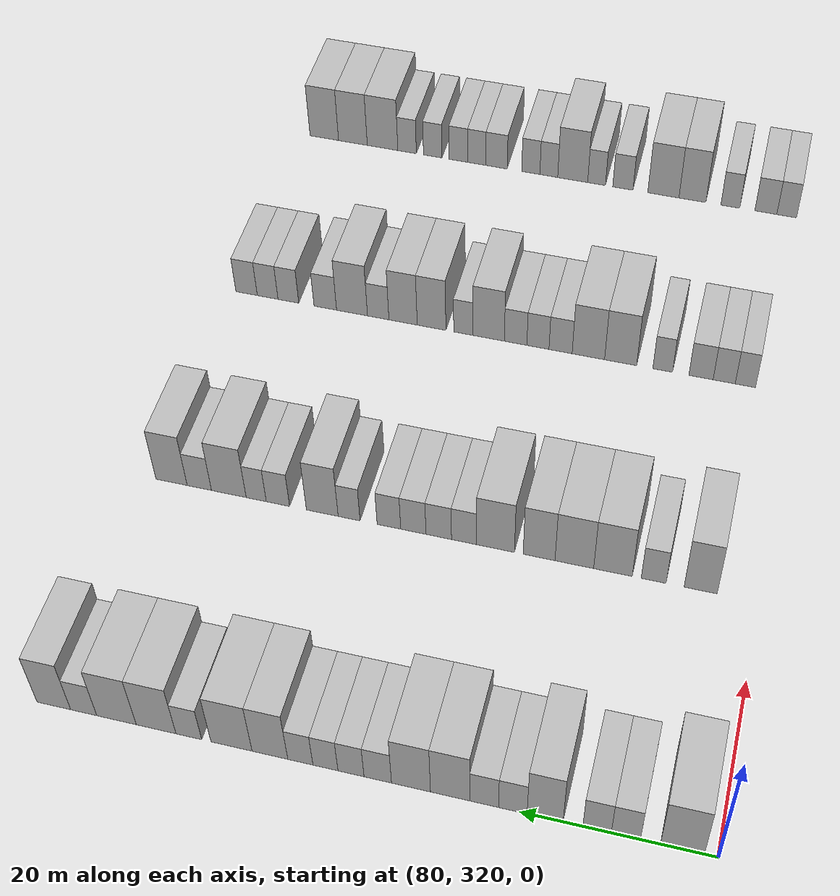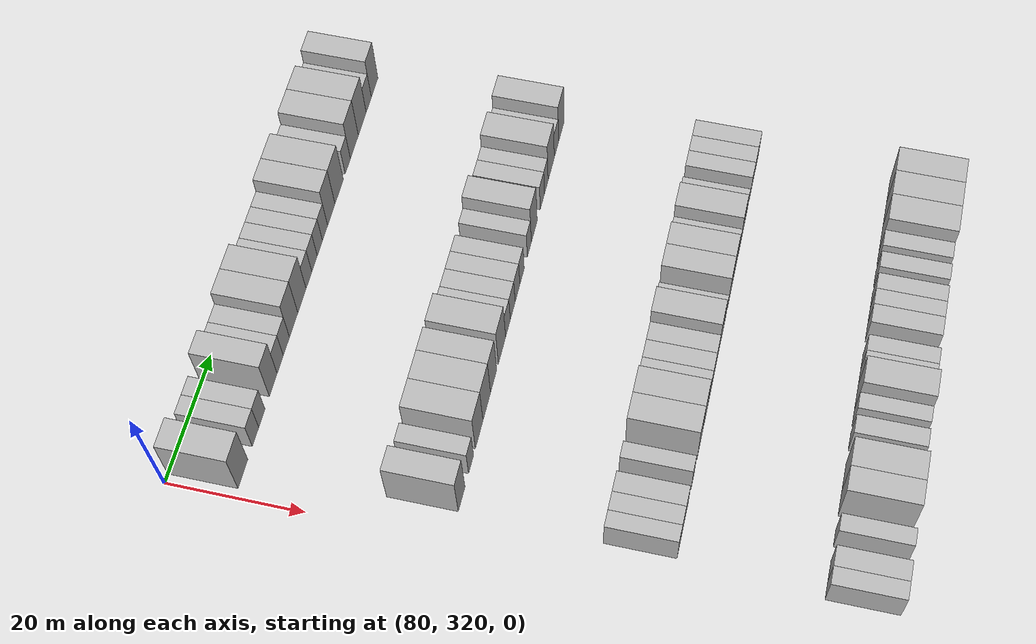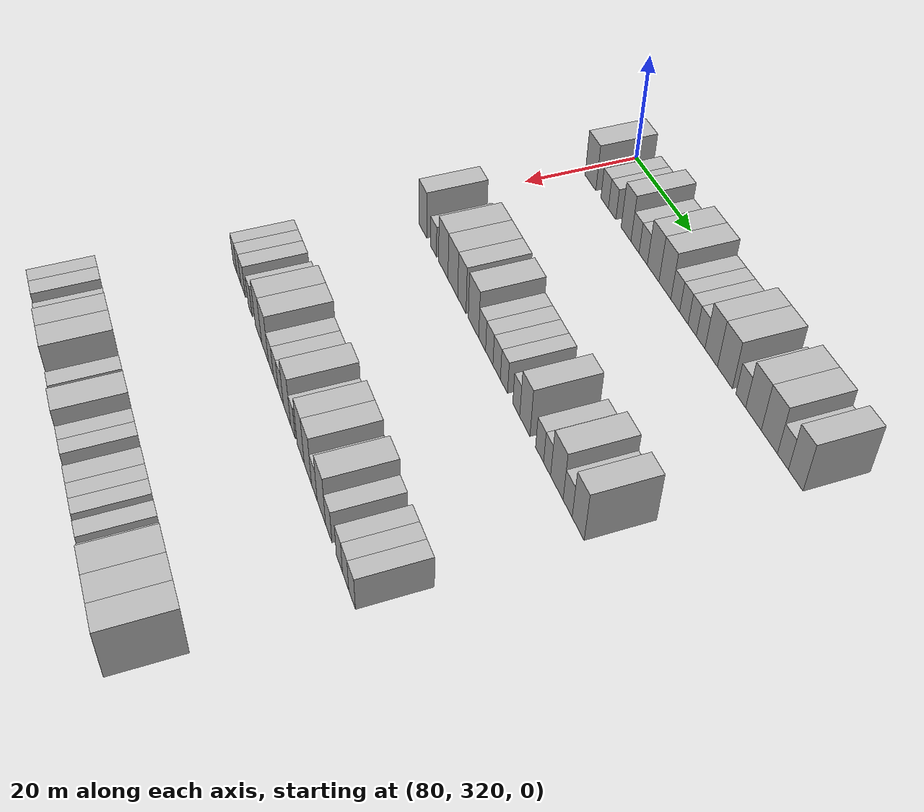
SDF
<sdf version="1.6">
 <world name="default">
  <model name="building_661">
   <static>1</static>
   <pose>85.0000 323.5908 0 0.000000 0.000000 0.000000</pose>
   <link name="link">
    <pose>0 0 4.50 0 0 0</pose>
    <collision name="collision"><geometry><box><size>10.0000 4.3597 9.0000</size></box></geometry></collision>
    <visual name="visual">
     <cast_shadows>0</cast_shadows>
     <geometry><box><size>10.0000 4.3597 9.0000</size></box></geometry>
     <material>
      <script>
       <uri>model://HANNAS_wall/materials/scripts</uri>
       <uri>model://HANNAS_wall/materials/textures</uri>
       <name>vrc/HANNAS_wall</name>
      </script>
     </material>
    </visual>
   </link>
  </model>
  <model name="building_662">
   <static>1</static>
   <pose>85.0000 329.2293 0 0.000000 0.000000 0.000000</pose>
   <link name="link">
    <pose>0 0 3.00 0 0 0</pose>
    <collision name="collision"><geometry><box><size>10.0000 2.9172 6.0000</size></box></geometry></collision>
    <visual name="visual">
     <cast_shadows>0</cast_shadows>
     <geometry><box><size>10.0000 2.9172 6.0000</size></box></geometry>
     <material>
      <script>
       <uri>model://HANNAS_wall/materials/scripts</uri>
       <uri>model://HANNAS_wall/materials/textures</uri>
       <name>vrc/HANNAS_wall</name>
      </script>
     </material>
    </visual>
   </link>
  </model>
  <model name="building_663">
   <static>1</static>
   <pose>85.0000 332.1203 0 0.000000 0.000000 0.000000</pose>
   <link name="link">
    <pose>0 0 3.00 0 0 0</pose>
    <collision name="collision"><geometry><box><size>10.0000 2.8648 6.0000</size></box></geometry></collision>
    <visual name="visual">
     <cast_shadows>0</cast_shadows>
     <geometry><box><size>10.0000 2.8648 6.0000</size></box></geometry>
     <material>
      <script>
       <uri>model://HANNAS_wall/materials/scripts</uri>
       <uri>model://HANNAS_wall/materials/textures</uri>
       <name>vrc/HANNAS_wall</name>
      </script>
     </material>
    </visual>
   </link>
  </model>
  <model name="building_664">
   <static>1</static>
   <pose>85.0000 337.3831 0 0.000000 0.000000 0.000000</pose>
   <link name="link">
    <pose>0 0 4.50 0 0 0</pose>
    <collision name="collision"><geometry><box><size>10.0000 3.6607 9.0000</size></box></geometry></collision>
    <visual name="visual">
     <cast_shadows>0</cast_shadows>
     <geometry><box><size>10.0000 3.6607 9.0000</size></box></geometry>
     <material>
      <script>
       <uri>model://HANNAS_wall/materials/scripts</uri>
       <uri>model://HANNAS_wall/materials/textures</uri>
       <name>vrc/HANNAS_wall</name>
      </script>
     </material>
    </visual>
   </link>
  </model>
  <model name="building_665">
   <static>1</static>
   <pose>85.0000 340.6712 0 0.000000 0.000000 0.000000</pose>
   <link name="link">
    <pose>0 0 3.00 0 0 0</pose>
    <collision name="collision"><geometry><box><size>10.0000 2.9155 6.0000</size></box></geometry></collision>
    <visual name="visual">
     <cast_shadows>0</cast_shadows>
     <geometry><box><size>10.0000 2.9155 6.0000</size></box></geometry>
     <material>
      <script>
       <uri>model://HANNAS_wall/materials/scripts</uri>
       <uri>model://HANNAS_wall/materials/textures</uri>
       <name>vrc/HANNAS_wall</name>
      </script>
     </material>
    </visual>
   </link>
  </model>
  <model name="building_666">
   <static>1</static>
   <pose>85.0000 343.6077 0 0.000000 0.000000 0.000000</pose>
   <link name="link">
    <pose>0 0 3.00 0 0 0</pose>
    <collision name="collision"><geometry><box><size>10.0000 2.9574 6.0000</size></box></geometry></collision>
    <visual name="visual">
     <cast_shadows>0</cast_shadows>
     <geometry><box><size>10.0000 2.9574 6.0000</size></box></geometry>
     <material>
      <script>
       <uri>model://HANNAS_wall/materials/scripts</uri>
       <uri>model://HANNAS_wall/materials/textures</uri>
       <name>vrc/HANNAS_wall</name>
      </script>
     </material>
    </visual>
   </link>
  </model>
  <model name="building_667">
   <static>1</static>
   <pose>85.0000 347.1143 0 0.000000 0.000000 0.000000</pose>
   <link name="link">
    <pose>0 0 4.50 0 0 0</pose>
    <collision name="collision"><geometry><box><size>10.0000 4.0559 9.0000</size></box></geometry></collision>
    <visual name="visual">
     <cast_shadows>0</cast_shadows>
     <geometry><box><size>10.0000 4.0559 9.0000</size></box></geometry>
     <material>
      <script>
       <uri>model://HANNAS_wall/materials/scripts</uri>
       <uri>model://HANNAS_wall/materials/textures</uri>
       <name>vrc/HANNAS_wall</name>
      </script>
     </material>
    </visual>
   </link>
  </model>
  <model name="building_668">
   <static>1</static>
   <pose>85.0000 351.1726 0 0.000000 0.000000 0.000000</pose>
   <link name="link">
    <pose>0 0 4.50 0 0 0</pose>
    <collision name="collision"><geometry><box><size>10.0000 4.0607 9.0000</size></box></geometry></collision>
    <visual name="visual">
     <cast_shadows>0</cast_shadows>
     <geometry><box><size>10.0000 4.0607 9.0000</size></box></geometry>
     <material>
      <script>
       <uri>model://HANNAS_wall/materials/scripts</uri>
       <uri>model://HANNAS_wall/materials/textures</uri>
       <name>vrc/HANNAS_wall</name>
      </script>
     </material>
    </visual>
   </link>
  </model>
  <model name="building_669">
   <static>1</static>
   <pose>85.0000 354.6429 0 0.000000 0.000000 0.000000</pose>
   <link name="link">
    <pose>0 0 3.00 0 0 0</pose>
    <collision name="collision"><geometry><box><size>10.0000 2.8799 6.0000</size></box></geometry></collision>
    <visual name="visual">
     <cast_shadows>0</cast_shadows>
     <geometry><box><size>10.0000 2.8799 6.0000</size></box></geometry>
     <material>
      <script>
       <uri>model://HANNAS_wall/materials/scripts</uri>
       <uri>model://HANNAS_wall/materials/textures</uri>
       <name>vrc/HANNAS_wall</name>
      </script>
     </material>
    </visual>
   </link>
  </model>
  <model name="building_670">
   <static>1</static>
   <pose>85.0000 357.4559 0 0.000000 0.000000 0.000000</pose>
   <link name="link">
    <pose>0 0 3.00 0 0 0</pose>
    <collision name="collision"><geometry><box><size>10.0000 2.7462 6.0000</size></box></geometry></collision>
    <visual name="visual">
     <cast_shadows>0</cast_shadows>
     <geometry><box><size>10.0000 2.7462 6.0000</size></box></geometry>
     <material>
      <script>
       <uri>model://HANNAS_wall/materials/scripts</uri>
       <uri>model://HANNAS_wall/materials/textures</uri>
       <name>vrc/HANNAS_wall</name>
      </script>
     </material>
    </visual>
   </link>
  </model>
  <model name="building_671">
   <static>1</static>
   <pose>85.0000 360.1552 0 0.000000 0.000000 0.000000</pose>
   <link name="link">
    <pose>0 0 3.00 0 0 0</pose>
    <collision name="collision"><geometry><box><size>10.0000 2.6524 6.0000</size></box></geometry></collision>
    <visual name="visual">
     <cast_shadows>0</cast_shadows>
     <geometry><box><size>10.0000 2.6524 6.0000</size></box></geometry>
     <material>
      <script>
       <uri>model://HANNAS_wall/materials/scripts</uri>
       <uri>model://HANNAS_wall/materials/textures</uri>
       <name>vrc/HANNAS_wall</name>
      </script>
     </material>
    </visual>
   </link>
  </model>
  <model name="building_672">
   <static>1</static>
   <pose>85.0000 362.8177 0 0.000000 0.000000 0.000000</pose>
   <link name="link">
    <pose>0 0 3.00 0 0 0</pose>
    <collision name="collision"><geometry><box><size>10.0000 2.6727 6.0000</size></box></geometry></collision>
    <visual name="visual">
     <cast_shadows>0</cast_shadows>
     <geometry><box><size>10.0000 2.6727 6.0000</size></box></geometry>
     <material>
      <script>
       <uri>model://HANNAS_wall/materials/scripts</uri>
       <uri>model://HANNAS_wall/materials/textures</uri>
       <name>vrc/HANNAS_wall</name>
      </script>
     </material>
    </visual>
   </link>
  </model>
  <model name="building_673">
   <static>1</static>
   <pose>85.0000 366.0687 0 0.000000 0.000000 0.000000</pose>
   <link name="link">
    <pose>0 0 4.50 0 0 0</pose>
    <collision name="collision"><geometry><box><size>10.0000 3.8294 9.0000</size></box></geometry></collision>
    <visual name="visual">
     <cast_shadows>0</cast_shadows>
     <geometry><box><size>10.0000 3.8294 9.0000</size></box></geometry>
     <material>
      <script>
       <uri>model://HANNAS_wall/materials/scripts</uri>
       <uri>model://HANNAS_wall/materials/textures</uri>
       <name>vrc/HANNAS_wall</name>
      </script>
     </material>
    </visual>
   </link>
  </model>
  <model name="building_674">
   <static>1</static>
   <pose>85.0000 370.1975 0 0.000000 0.000000 0.000000</pose>
   <link name="link">
    <pose>0 0 4.50 0 0 0</pose>
    <collision name="collision"><geometry><box><size>10.0000 4.4280 9.0000</size></box></geometry></collision>
    <visual name="visual">
     <cast_shadows>0</cast_shadows>
     <geometry><box><size>10.0000 4.4280 9.0000</size></box></geometry>
     <material>
      <script>
       <uri>model://HANNAS_wall/materials/scripts</uri>
       <uri>model://HANNAS_wall/materials/textures</uri>
       <name>vrc/HANNAS_wall</name>
      </script>
     </material>
    </visual>
   </link>
  </model>
  <model name="building_675">
   <static>1</static>
   <pose>85.0000 374.8114 0 0.000000 0.000000 0.000000</pose>
   <link name="link">
    <pose>0 0 3.00 0 0 0</pose>
    <collision name="collision"><geometry><box><size>10.0000 2.7998 6.0000</size></box></geometry></collision>
    <visual name="visual">
     <cast_shadows>0</cast_shadows>
     <geometry><box><size>10.0000 2.7998 6.0000</size></box></geometry>
     <material>
      <script>
       <uri>model://HANNAS_wall/materials/scripts</uri>
       <uri>model://HANNAS_wall/materials/textures</uri>
       <name>vrc/HANNAS_wall</name>
      </script>
     </material>
    </visual>
   </link>
  </model>
  <model name="building_676">
   <static>1</static>
   <pose>85.0000 378.3871 0 0.000000 0.000000 0.000000</pose>
   <link name="link">
    <pose>0 0 4.50 0 0 0</pose>
    <collision name="collision"><geometry><box><size>10.0000 4.3517 9.0000</size></box></geometry></collision>
    <visual name="visual">
     <cast_shadows>0</cast_shadows>
     <geometry><box><size>10.0000 4.3517 9.0000</size></box></geometry>
     <material>
      <script>
       <uri>model://HANNAS_wall/materials/scripts</uri>
       <uri>model://HANNAS_wall/materials/textures</uri>
       <name>vrc/HANNAS_wall</name>
      </script>
     </material>
    </visual>
   </link>
  </model>
  <model name="building_677">
   <static>1</static>
   <pose>85.0000 382.7381 0 0.000000 0.000000 0.000000</pose>
   <link name="link">
    <pose>0 0 4.50 0 0 0</pose>
    <collision name="collision"><geometry><box><size>10.0000 4.3503 9.0000</size></box></geometry></collision>
    <visual name="visual">
     <cast_shadows>0</cast_shadows>
     <geometry><box><size>10.0000 4.3503 9.0000</size></box></geometry>
     <material>
      <script>
       <uri>model://HANNAS_wall/materials/scripts</uri>
       <uri>model://HANNAS_wall/materials/textures</uri>
       <name>vrc/HANNAS_wall</name>
      </script>
     </material>
    </visual>
   </link>
  </model>
  <model name="building_678">
   <static>1</static>
   <pose>85.0000 386.3577 0 0.000000 0.000000 0.000000</pose>
   <link name="link">
    <pose>0 0 3.00 0 0 0</pose>
    <collision name="collision"><geometry><box><size>10.0000 2.8889 6.0000</size></box></geometry></collision>
    <visual name="visual">
     <cast_shadows>0</cast_shadows>
     <geometry><box><size>10.0000 2.8889 6.0000</size></box></geometry>
     <material>
      <script>
       <uri>model://HANNAS_wall/materials/scripts</uri>
       <uri>model://HANNAS_wall/materials/textures</uri>
       <name>vrc/HANNAS_wall</name>
      </script>
     </material>
    </visual>
   </link>
  </model>
  <model name="building_679">
   <static>1</static>
   <pose>85.0000 389.6810 0 0.000000 0.000000 0.000000</pose>
   <link name="link">
    <pose>0 0 4.50 0 0 0</pose>
    <collision name="collision"><geometry><box><size>10.0000 3.7577 9.0000</size></box></geometry></collision>
    <visual name="visual">
     <cast_shadows>0</cast_shadows>
     <geometry><box><size>10.0000 3.7577 9.0000</size></box></geometry>
     <material>
      <script>
       <uri>model://HANNAS_wall/materials/scripts</uri>
       <uri>model://HANNAS_wall/materials/textures</uri>
       <name>vrc/HANNAS_wall</name>
      </script>
     </material>
    </visual>
   </link>
  </model>
  <model name="building_889">
   <static>1</static>
   <pose>115.0000 326.3951 0 0.000000 0.000000 0.000000</pose>
   <link name="link">
    <pose>0 0 4.50 0 0 0</pose>
    <collision name="collision"><geometry><box><size>10.0000 3.6550 9.0000</size></box></geometry></collision>
    <visual name="visual">
     <cast_shadows>0</cast_shadows>
     <geometry><box><size>10.0000 3.6550 9.0000</size></box></geometry>
     <material>
      <script>
       <uri>model://HANNAS_wall/materials/scripts</uri>
       <uri>model://HANNAS_wall/materials/textures</uri>
       <name>vrc/HANNAS_wall</name>
      </script>
     </material>
    </visual>
   </link>
  </model>
  <model name="building_890">
   <static>1</static>
   <pose>115.0000 331.6067 0 0.000000 0.000000 0.000000</pose>
   <link name="link">
    <pose>0 0 3.00 0 0 0</pose>
    <collision name="collision"><geometry><box><size>10.0000 2.7681 6.0000</size></box></geometry></collision>
    <visual name="visual">
     <cast_shadows>0</cast_shadows>
     <geometry><box><size>10.0000 2.7681 6.0000</size></box></geometry>
     <material>
      <script>
       <uri>model://HANNAS_wall/materials/scripts</uri>
       <uri>model://HANNAS_wall/materials/textures</uri>
       <name>vrc/HANNAS_wall</name>
      </script>
     </material>
    </visual>
   </link>
  </model>
  <model name="building_891">
   <static>1</static>
   <pose>115.0000 336.1559 0 0.000000 0.000000 0.000000</pose>
   <link name="link">
    <pose>0 0 4.50 0 0 0</pose>
    <collision name="collision"><geometry><box><size>10.0000 4.3303 9.0000</size></box></geometry></collision>
    <visual name="visual">
     <cast_shadows>0</cast_shadows>
     <geometry><box><size>10.0000 4.3303 9.0000</size></box></geometry>
     <material>
      <script>
       <uri>model://HANNAS_wall/materials/scripts</uri>
       <uri>model://HANNAS_wall/materials/textures</uri>
       <name>vrc/HANNAS_wall</name>
      </script>
     </material>
    </visual>
   </link>
  </model>
  <model name="building_892">
   <static>1</static>
   <pose>115.0000 340.5060 0 0.000000 0.000000 0.000000</pose>
   <link name="link">
    <pose>0 0 4.50 0 0 0</pose>
    <collision name="collision"><geometry><box><size>10.0000 4.3699 9.0000</size></box></geometry></collision>
    <visual name="visual">
     <cast_shadows>0</cast_shadows>
     <geometry><box><size>10.0000 4.3699 9.0000</size></box></geometry>
     <material>
      <script>
       <uri>model://HANNAS_wall/materials/scripts</uri>
       <uri>model://HANNAS_wall/materials/textures</uri>
       <name>vrc/HANNAS_wall</name>
      </script>
     </material>
    </visual>
   </link>
  </model>
  <model name="building_893">
   <static>1</static>
   <pose>115.0000 344.5002 0 0.000000 0.000000 0.000000</pose>
   <link name="link">
    <pose>0 0 4.50 0 0 0</pose>
    <collision name="collision"><geometry><box><size>10.0000 3.6186 9.0000</size></box></geometry></collision>
    <visual name="visual">
     <cast_shadows>0</cast_shadows>
     <geometry><box><size>10.0000 3.6186 9.0000</size></box></geometry>
     <material>
      <script>
       <uri>model://HANNAS_wall/materials/scripts</uri>
       <uri>model://HANNAS_wall/materials/textures</uri>
       <name>vrc/HANNAS_wall</name>
      </script>
     </material>
    </visual>
   </link>
  </model>
  <model name="building_894">
   <static>1</static>
   <pose>115.0000 349.4964 0 0.000000 0.000000 0.000000</pose>
   <link name="link">
    <pose>0 0 4.50 0 0 0</pose>
    <collision name="collision"><geometry><box><size>10.0000 4.3738 9.0000</size></box></geometry></collision>
    <visual name="visual">
     <cast_shadows>0</cast_shadows>
     <geometry><box><size>10.0000 4.3738 9.0000</size></box></geometry>
     <material>
      <script>
       <uri>model://HANNAS_wall/materials/scripts</uri>
       <uri>model://HANNAS_wall/materials/textures</uri>
       <name>vrc/HANNAS_wall</name>
      </script>
     </material>
    </visual>
   </link>
  </model>
  <model name="building_895">
   <static>1</static>
   <pose>115.0000 353.1122 0 0.000000 0.000000 0.000000</pose>
   <link name="link">
    <pose>0 0 3.00 0 0 0</pose>
    <collision name="collision"><geometry><box><size>10.0000 2.8577 6.0000</size></box></geometry></collision>
    <visual name="visual">
     <cast_shadows>0</cast_shadows>
     <geometry><box><size>10.0000 2.8577 6.0000</size></box></geometry>
     <material>
      <script>
       <uri>model://HANNAS_wall/materials/scripts</uri>
       <uri>model://HANNAS_wall/materials/textures</uri>
       <name>vrc/HANNAS_wall</name>
      </script>
     </material>
    </visual>
   </link>
  </model>
  <model name="building_896">
   <static>1</static>
   <pose>115.0000 356.0204 0 0.000000 0.000000 0.000000</pose>
   <link name="link">
    <pose>0 0 3.00 0 0 0</pose>
    <collision name="collision"><geometry><box><size>10.0000 2.9588 6.0000</size></box></geometry></collision>
    <visual name="visual">
     <cast_shadows>0</cast_shadows>
     <geometry><box><size>10.0000 2.9588 6.0000</size></box></geometry>
     <material>
      <script>
       <uri>model://HANNAS_wall/materials/scripts</uri>
       <uri>model://HANNAS_wall/materials/textures</uri>
       <name>vrc/HANNAS_wall</name>
      </script>
     </material>
    </visual>
   </link>
  </model>
  <model name="building_897">
   <static>1</static>
   <pose>115.0000 358.9699 0 0.000000 0.000000 0.000000</pose>
   <link name="link">
    <pose>0 0 3.00 0 0 0</pose>
    <collision name="collision"><geometry><box><size>10.0000 2.9402 6.0000</size></box></geometry></collision>
    <visual name="visual">
     <cast_shadows>0</cast_shadows>
     <geometry><box><size>10.0000 2.9402 6.0000</size></box></geometry>
     <material>
      <script>
       <uri>model://HANNAS_wall/materials/scripts</uri>
       <uri>model://HANNAS_wall/materials/textures</uri>
       <name>vrc/HANNAS_wall</name>
      </script>
     </material>
    </visual>
   </link>
  </model>
  <model name="building_898">
   <static>1</static>
   <pose>115.0000 361.8188 0 0.000000 0.000000 0.000000</pose>
   <link name="link">
    <pose>0 0 3.00 0 0 0</pose>
    <collision name="collision"><geometry><box><size>10.0000 2.7575 6.0000</size></box></geometry></collision>
    <visual name="visual">
     <cast_shadows>0</cast_shadows>
     <geometry><box><size>10.0000 2.7575 6.0000</size></box></geometry>
     <material>
      <script>
       <uri>model://HANNAS_wall/materials/scripts</uri>
       <uri>model://HANNAS_wall/materials/textures</uri>
       <name>vrc/HANNAS_wall</name>
      </script>
     </material>
    </visual>
   </link>
  </model>
  <model name="building_899">
   <static>1</static>
   <pose>115.0000 366.4895 0 0.000000 0.000000 0.000000</pose>
   <link name="link">
    <pose>0 0 3.00 0 0 0</pose>
    <collision name="collision"><geometry><box><size>10.0000 2.5841 6.0000</size></box></geometry></collision>
    <visual name="visual">
     <cast_shadows>0</cast_shadows>
     <geometry><box><size>10.0000 2.5841 6.0000</size></box></geometry>
     <material>
      <script>
       <uri>model://HANNAS_wall/materials/scripts</uri>
       <uri>model://HANNAS_wall/materials/textures</uri>
       <name>vrc/HANNAS_wall</name>
      </script>
     </material>
    </visual>
   </link>
  </model>
  <model name="building_900">
   <static>1</static>
   <pose>115.0000 369.6629 0 0.000000 0.000000 0.000000</pose>
   <link name="link">
    <pose>0 0 4.50 0 0 0</pose>
    <collision name="collision"><geometry><box><size>10.0000 3.7627 9.0000</size></box></geometry></collision>
    <visual name="visual">
     <cast_shadows>0</cast_shadows>
     <geometry><box><size>10.0000 3.7627 9.0000</size></box></geometry>
     <material>
      <script>
       <uri>model://HANNAS_wall/materials/scripts</uri>
       <uri>model://HANNAS_wall/materials/textures</uri>
       <name>vrc/HANNAS_wall</name>
      </script>
     </material>
    </visual>
   </link>
  </model>
  <model name="building_901">
   <static>1</static>
   <pose>115.0000 374.9414 0 0.000000 0.000000 0.000000</pose>
   <link name="link">
    <pose>0 0 3.00 0 0 0</pose>
    <collision name="collision"><geometry><box><size>10.0000 2.7943 6.0000</size></box></geometry></collision>
    <visual name="visual">
     <cast_shadows>0</cast_shadows>
     <geometry><box><size>10.0000 2.7943 6.0000</size></box></geometry>
     <material>
      <script>
       <uri>model://HANNAS_wall/materials/scripts</uri>
       <uri>model://HANNAS_wall/materials/textures</uri>
       <name>vrc/HANNAS_wall</name>
      </script>
     </material>
    </visual>
   </link>
  </model>
  <model name="building_902">
   <static>1</static>
   <pose>115.0000 377.5421 0 0.000000 0.000000 0.000000</pose>
   <link name="link">
    <pose>0 0 3.00 0 0 0</pose>
    <collision name="collision"><geometry><box><size>10.0000 2.4072 6.0000</size></box></geometry></collision>
    <visual name="visual">
     <cast_shadows>0</cast_shadows>
     <geometry><box><size>10.0000 2.4072 6.0000</size></box></geometry>
     <material>
      <script>
       <uri>model://HANNAS_wall/materials/scripts</uri>
       <uri>model://HANNAS_wall/materials/textures</uri>
       <name>vrc/HANNAS_wall</name>
      </script>
     </material>
    </visual>
   </link>
  </model>
  <model name="building_903">
   <static>1</static>
   <pose>115.0000 380.8380 0 0.000000 0.000000 0.000000</pose>
   <link name="link">
    <pose>0 0 4.50 0 0 0</pose>
    <collision name="collision"><geometry><box><size>10.0000 4.1844 9.0000</size></box></geometry></collision>
    <visual name="visual">
     <cast_shadows>0</cast_shadows>
     <geometry><box><size>10.0000 4.1844 9.0000</size></box></geometry>
     <material>
      <script>
       <uri>model://HANNAS_wall/materials/scripts</uri>
       <uri>model://HANNAS_wall/materials/textures</uri>
       <name>vrc/HANNAS_wall</name>
      </script>
     </material>
    </visual>
   </link>
  </model>
  <model name="building_904">
   <static>1</static>
   <pose>115.0000 384.4048 0 0.000000 0.000000 0.000000</pose>
   <link name="link">
    <pose>0 0 3.00 0 0 0</pose>
    <collision name="collision"><geometry><box><size>10.0000 2.9492 6.0000</size></box></geometry></collision>
    <visual name="visual">
     <cast_shadows>0</cast_shadows>
     <geometry><box><size>10.0000 2.9492 6.0000</size></box></geometry>
     <material>
      <script>
       <uri>model://HANNAS_wall/materials/scripts</uri>
       <uri>model://HANNAS_wall/materials/textures</uri>
       <name>vrc/HANNAS_wall</name>
      </script>
     </material>
    </visual>
   </link>
  </model>
  <model name="building_905">
   <static>1</static>
   <pose>115.0000 387.7838 0 0.000000 0.000000 0.000000</pose>
   <link name="link">
    <pose>0 0 4.50 0 0 0</pose>
    <collision name="collision"><geometry><box><size>10.0000 3.8088 9.0000</size></box></geometry></collision>
    <visual name="visual">
     <cast_shadows>0</cast_shadows>
     <geometry><box><size>10.0000 3.8088 9.0000</size></box></geometry>
     <material>
      <script>
       <uri>model://HANNAS_wall/materials/scripts</uri>
       <uri>model://HANNAS_wall/materials/textures</uri>
       <name>vrc/HANNAS_wall</name>
      </script>
     </material>
    </visual>
   </link>
  </model>
  <model name="building_1120">
   <static>1</static>
   <pose>145.0000 325.5544 0 0.000000 0.000000 0.000000</pose>
   <link name="link">
    <pose>0 0 3.00 0 0 0</pose>
    <collision name="collision"><geometry><box><size>10.0000 2.4533 6.0000</size></box></geometry></collision>
    <visual name="visual">
     <cast_shadows>0</cast_shadows>
     <geometry><box><size>10.0000 2.4533 6.0000</size></box></geometry>
     <material>
      <script>
       <uri>model://HANNAS_wall/materials/scripts</uri>
       <uri>model://HANNAS_wall/materials/textures</uri>
       <name>vrc/HANNAS_wall</name>
      </script>
     </material>
    </visual>
   </link>
  </model>
  <model name="building_1121">
   <static>1</static>
   <pose>145.0000 328.1254 0 0.000000 0.000000 0.000000</pose>
   <link name="link">
    <pose>0 0 3.00 0 0 0</pose>
    <collision name="collision"><geometry><box><size>10.0000 2.6888 6.0000</size></box></geometry></collision>
    <visual name="visual">
     <cast_shadows>0</cast_shadows>
     <geometry><box><size>10.0000 2.6888 6.0000</size></box></geometry>
     <material>
      <script>
       <uri>model://HANNAS_wall/materials/scripts</uri>
       <uri>model://HANNAS_wall/materials/textures</uri>
       <name>vrc/HANNAS_wall</name>
      </script>
     </material>
    </visual>
   </link>
  </model>
  <model name="building_1122">
   <static>1</static>
   <pose>145.0000 330.9497 0 0.000000 0.000000 0.000000</pose>
   <link name="link">
    <pose>0 0 3.00 0 0 0</pose>
    <collision name="collision"><geometry><box><size>10.0000 2.9598 6.0000</size></box></geometry></collision>
    <visual name="visual">
     <cast_shadows>0</cast_shadows>
     <geometry><box><size>10.0000 2.9598 6.0000</size></box></geometry>
     <material>
      <script>
       <uri>model://HANNAS_wall/materials/scripts</uri>
       <uri>model://HANNAS_wall/materials/textures</uri>
       <name>vrc/HANNAS_wall</name>
      </script>
     </material>
    </visual>
   </link>
  </model>
  <model name="building_1123">
   <static>1</static>
   <pose>145.0000 335.6410 0 0.000000 0.000000 0.000000</pose>
   <link name="link">
    <pose>0 0 3.00 0 0 0</pose>
    <collision name="collision"><geometry><box><size>10.0000 2.4227 6.0000</size></box></geometry></collision>
    <visual name="visual">
     <cast_shadows>0</cast_shadows>
     <geometry><box><size>10.0000 2.4227 6.0000</size></box></geometry>
     <material>
      <script>
       <uri>model://HANNAS_wall/materials/scripts</uri>
       <uri>model://HANNAS_wall/materials/textures</uri>
       <name>vrc/HANNAS_wall</name>
      </script>
     </material>
    </visual>
   </link>
  </model>
  <model name="building_1124">
   <static>1</static>
   <pose>145.0000 340.8399 0 0.000000 0.000000 0.000000</pose>
   <link name="link">
    <pose>0 0 4.50 0 0 0</pose>
    <collision name="collision"><geometry><box><size>10.0000 3.9751 9.0000</size></box></geometry></collision>
    <visual name="visual">
     <cast_shadows>0</cast_shadows>
     <geometry><box><size>10.0000 3.9751 9.0000</size></box></geometry>
     <material>
      <script>
       <uri>model://HANNAS_wall/materials/scripts</uri>
       <uri>model://HANNAS_wall/materials/textures</uri>
       <name>vrc/HANNAS_wall</name>
      </script>
     </material>
    </visual>
   </link>
  </model>
  <model name="building_1125">
   <static>1</static>
   <pose>145.0000 344.8487 0 0.000000 0.000000 0.000000</pose>
   <link name="link">
    <pose>0 0 4.50 0 0 0</pose>
    <collision name="collision"><geometry><box><size>10.0000 4.0425 9.0000</size></box></geometry></collision>
    <visual name="visual">
     <cast_shadows>0</cast_shadows>
     <geometry><box><size>10.0000 4.0425 9.0000</size></box></geometry>
     <material>
      <script>
       <uri>model://HANNAS_wall/materials/scripts</uri>
       <uri>model://HANNAS_wall/materials/textures</uri>
       <name>vrc/HANNAS_wall</name>
      </script>
     </material>
    </visual>
   </link>
  </model>
  <model name="building_1126">
   <static>1</static>
   <pose>145.0000 348.3184 0 0.000000 0.000000 0.000000</pose>
   <link name="link">
    <pose>0 0 3.00 0 0 0</pose>
    <collision name="collision"><geometry><box><size>10.0000 2.8969 6.0000</size></box></geometry></collision>
    <visual name="visual">
     <cast_shadows>0</cast_shadows>
     <geometry><box><size>10.0000 2.8969 6.0000</size></box></geometry>
     <material>
      <script>
       <uri>model://HANNAS_wall/materials/scripts</uri>
       <uri>model://HANNAS_wall/materials/textures</uri>
       <name>vrc/HANNAS_wall</name>
      </script>
     </material>
    </visual>
   </link>
  </model>
  <model name="building_1127">
   <static>1</static>
   <pose>145.0000 351.1605 0 0.000000 0.000000 0.000000</pose>
   <link name="link">
    <pose>0 0 3.00 0 0 0</pose>
    <collision name="collision"><geometry><box><size>10.0000 2.7874 6.0000</size></box></geometry></collision>
    <visual name="visual">
     <cast_shadows>0</cast_shadows>
     <geometry><box><size>10.0000 2.7874 6.0000</size></box></geometry>
     <material>
      <script>
       <uri>model://HANNAS_wall/materials/scripts</uri>
       <uri>model://HANNAS_wall/materials/textures</uri>
       <name>vrc/HANNAS_wall</name>
      </script>
     </material>
    </visual>
   </link>
  </model>
  <model name="building_1128">
   <static>1</static>
   <pose>145.0000 353.9772 0 0.000000 0.000000 0.000000</pose>
   <link name="link">
    <pose>0 0 3.00 0 0 0</pose>
    <collision name="collision"><geometry><box><size>10.0000 2.8459 6.0000</size></box></geometry></collision>
    <visual name="visual">
     <cast_shadows>0</cast_shadows>
     <geometry><box><size>10.0000 2.8459 6.0000</size></box></geometry>
     <material>
      <script>
       <uri>model://HANNAS_wall/materials/scripts</uri>
       <uri>model://HANNAS_wall/materials/textures</uri>
       <name>vrc/HANNAS_wall</name>
      </script>
     </material>
    </visual>
   </link>
  </model>
  <model name="building_1129">
   <static>1</static>
   <pose>145.0000 357.3928 0 0.000000 0.000000 0.000000</pose>
   <link name="link">
    <pose>0 0 4.50 0 0 0</pose>
    <collision name="collision"><geometry><box><size>10.0000 3.9854 9.0000</size></box></geometry></collision>
    <visual name="visual">
     <cast_shadows>0</cast_shadows>
     <geometry><box><size>10.0000 3.9854 9.0000</size></box></geometry>
     <material>
      <script>
       <uri>model://HANNAS_wall/materials/scripts</uri>
       <uri>model://HANNAS_wall/materials/textures</uri>
       <name>vrc/HANNAS_wall</name>
      </script>
     </material>
    </visual>
   </link>
  </model>
  <model name="building_1130">
   <static>1</static>
   <pose>145.0000 360.6075 0 0.000000 0.000000 0.000000</pose>
   <link name="link">
    <pose>0 0 3.00 0 0 0</pose>
    <collision name="collision"><geometry><box><size>10.0000 2.4441 6.0000</size></box></geometry></collision>
    <visual name="visual">
     <cast_shadows>0</cast_shadows>
     <geometry><box><size>10.0000 2.4441 6.0000</size></box></geometry>
     <material>
      <script>
       <uri>model://HANNAS_wall/materials/scripts</uri>
       <uri>model://HANNAS_wall/materials/textures</uri>
       <name>vrc/HANNAS_wall</name>
      </script>
     </material>
    </visual>
   </link>
  </model>
  <model name="building_1131">
   <static>1</static>
   <pose>145.0000 364.6698 0 0.000000 0.000000 0.000000</pose>
   <link name="link">
    <pose>0 0 4.50 0 0 0</pose>
    <collision name="collision"><geometry><box><size>10.0000 3.6806 9.0000</size></box></geometry></collision>
    <visual name="visual">
     <cast_shadows>0</cast_shadows>
     <geometry><box><size>10.0000 3.6806 9.0000</size></box></geometry>
     <material>
      <script>
       <uri>model://HANNAS_wall/materials/scripts</uri>
       <uri>model://HANNAS_wall/materials/textures</uri>
       <name>vrc/HANNAS_wall</name>
      </script>
     </material>
    </visual>
   </link>
  </model>
  <model name="building_1132">
   <static>1</static>
   <pose>145.0000 368.3363 0 0.000000 0.000000 0.000000</pose>
   <link name="link">
    <pose>0 0 4.50 0 0 0</pose>
    <collision name="collision"><geometry><box><size>10.0000 3.6524 9.0000</size></box></geometry></collision>
    <visual name="visual">
     <cast_shadows>0</cast_shadows>
     <geometry><box><size>10.0000 3.6524 9.0000</size></box></geometry>
     <material>
      <script>
       <uri>model://HANNAS_wall/materials/scripts</uri>
       <uri>model://HANNAS_wall/materials/textures</uri>
       <name>vrc/HANNAS_wall</name>
      </script>
     </material>
    </visual>
   </link>
  </model>
  <model name="building_1133">
   <static>1</static>
   <pose>145.0000 371.5498 0 0.000000 0.000000 0.000000</pose>
   <link name="link">
    <pose>0 0 3.00 0 0 0</pose>
    <collision name="collision"><geometry><box><size>10.0000 2.7747 6.0000</size></box></geometry></collision>
    <visual name="visual">
     <cast_shadows>0</cast_shadows>
     <geometry><box><size>10.0000 2.7747 6.0000</size></box></geometry>
     <material>
      <script>
       <uri>model://HANNAS_wall/materials/scripts</uri>
       <uri>model://HANNAS_wall/materials/textures</uri>
       <name>vrc/HANNAS_wall</name>
      </script>
     </material>
    </visual>
   </link>
  </model>
  <model name="building_1134">
   <static>1</static>
   <pose>145.0000 374.9523 0 0.000000 0.000000 0.000000</pose>
   <link name="link">
    <pose>0 0 4.50 0 0 0</pose>
    <collision name="collision"><geometry><box><size>10.0000 4.0303 9.0000</size></box></geometry></collision>
    <visual name="visual">
     <cast_shadows>0</cast_shadows>
     <geometry><box><size>10.0000 4.0303 9.0000</size></box></geometry>
     <material>
      <script>
       <uri>model://HANNAS_wall/materials/scripts</uri>
       <uri>model://HANNAS_wall/materials/textures</uri>
       <name>vrc/HANNAS_wall</name>
      </script>
     </material>
    </visual>
   </link>
  </model>
  <model name="building_1135">
   <static>1</static>
   <pose>145.0000 378.4423 0 0.000000 0.000000 0.000000</pose>
   <link name="link">
    <pose>0 0 3.00 0 0 0</pose>
    <collision name="collision"><geometry><box><size>10.0000 2.9498 6.0000</size></box></geometry></collision>
    <visual name="visual">
     <cast_shadows>0</cast_shadows>
     <geometry><box><size>10.0000 2.9498 6.0000</size></box></geometry>
     <material>
      <script>
       <uri>model://HANNAS_wall/materials/scripts</uri>
       <uri>model://HANNAS_wall/materials/textures</uri>
       <name>vrc/HANNAS_wall</name>
      </script>
     </material>
    </visual>
   </link>
  </model>
  <model name="building_1136">
   <static>1</static>
   <pose>145.0000 383.2894 0 0.000000 0.000000 0.000000</pose>
   <link name="link">
    <pose>0 0 3.00 0 0 0</pose>
    <collision name="collision"><geometry><box><size>10.0000 2.7443 6.0000</size></box></geometry></collision>
    <visual name="visual">
     <cast_shadows>0</cast_shadows>
     <geometry><box><size>10.0000 2.7443 6.0000</size></box></geometry>
     <material>
      <script>
       <uri>model://HANNAS_wall/materials/scripts</uri>
       <uri>model://HANNAS_wall/materials/textures</uri>
       <name>vrc/HANNAS_wall</name>
      </script>
     </material>
    </visual>
   </link>
  </model>
  <model name="building_1137">
   <static>1</static>
   <pose>145.0000 386.0289 0 0.000000 0.000000 0.000000</pose>
   <link name="link">
    <pose>0 0 3.00 0 0 0</pose>
    <collision name="collision"><geometry><box><size>10.0000 2.7347 6.0000</size></box></geometry></collision>
    <visual name="visual">
     <cast_shadows>0</cast_shadows>
     <geometry><box><size>10.0000 2.7347 6.0000</size></box></geometry>
     <material>
      <script>
       <uri>model://HANNAS_wall/materials/scripts</uri>
       <uri>model://HANNAS_wall/materials/textures</uri>
       <name>vrc/HANNAS_wall</name>
      </script>
     </material>
    </visual>
   </link>
  </model>
  <model name="building_1138">
   <static>1</static>
   <pose>145.0000 388.8168 0 0.000000 0.000000 0.000000</pose>
   <link name="link">
    <pose>0 0 3.00 0 0 0</pose>
    <collision name="collision"><geometry><box><size>10.0000 2.8412 6.0000</size></box></geometry></collision>
    <visual name="visual">
     <cast_shadows>0</cast_shadows>
     <geometry><box><size>10.0000 2.8412 6.0000</size></box></geometry>
     <material>
      <script>
       <uri>model://HANNAS_wall/materials/scripts</uri>
       <uri>model://HANNAS_wall/materials/textures</uri>
       <name>vrc/HANNAS_wall</name>
      </script>
     </material>
    </visual>
   </link>
  </model>
  <model name="building_1354">
   <static>1</static>
   <pose>175.0000 324.1853 0 0.000000 0.000000 0.000000</pose>
   <link name="link">
    <pose>0 0 3.00 0 0 0</pose>
    <collision name="collision"><geometry><box><size>10.0000 2.5925 6.0000</size></box></geometry></collision>
    <visual name="visual">
     <cast_shadows>0</cast_shadows>
     <geometry><box><size>10.0000 2.5925 6.0000</size></box></geometry>
     <material>
      <script>
       <uri>model://HANNAS_wall/materials/scripts</uri>
       <uri>model://HANNAS_wall/materials/textures</uri>
       <name>vrc/HANNAS_wall</name>
      </script>
     </material>
    </visual>
   </link>
  </model>
  <model name="building_1355">
   <static>1</static>
   <pose>175.0000 326.9318 0 0.000000 0.000000 0.000000</pose>
   <link name="link">
    <pose>0 0 3.00 0 0 0</pose>
    <collision name="collision"><geometry><box><size>10.0000 2.9004 6.0000</size></box></geometry></collision>
    <visual name="visual">
     <cast_shadows>0</cast_shadows>
     <geometry><box><size>10.0000 2.9004 6.0000</size></box></geometry>
     <material>
      <script>
       <uri>model://HANNAS_wall/materials/scripts</uri>
       <uri>model://HANNAS_wall/materials/textures</uri>
       <name>vrc/HANNAS_wall</name>
      </script>
     </material>
    </visual>
   </link>
  </model>
  <model name="building_1356">
   <static>1</static>
   <pose>175.0000 331.6404 0 0.000000 0.000000 0.000000</pose>
   <link name="link">
    <pose>0 0 3.00 0 0 0</pose>
    <collision name="collision"><geometry><box><size>10.0000 2.5167 6.0000</size></box></geometry></collision>
    <visual name="visual">
     <cast_shadows>0</cast_shadows>
     <geometry><box><size>10.0000 2.5167 6.0000</size></box></geometry>
     <material>
      <script>
       <uri>model://HANNAS_wall/materials/scripts</uri>
       <uri>model://HANNAS_wall/materials/textures</uri>
       <name>vrc/HANNAS_wall</name>
      </script>
     </material>
    </visual>
   </link>
  </model>
  <model name="building_1357">
   <static>1</static>
   <pose>175.0000 336.7038 0 0.000000 0.000000 0.000000</pose>
   <link name="link">
    <pose>0 0 4.50 0 0 0</pose>
    <collision name="collision"><geometry><box><size>10.0000 3.6101 9.0000</size></box></geometry></collision>
    <visual name="visual">
     <cast_shadows>0</cast_shadows>
     <geometry><box><size>10.0000 3.6101 9.0000</size></box></geometry>
     <material>
      <script>
       <uri>model://HANNAS_wall/materials/scripts</uri>
       <uri>model://HANNAS_wall/materials/textures</uri>
       <name>vrc/HANNAS_wall</name>
      </script>
     </material>
    </visual>
   </link>
  </model>
  <model name="building_1358">
   <static>1</static>
   <pose>175.0000 340.6070 0 0.000000 0.000000 0.000000</pose>
   <link name="link">
    <pose>0 0 4.50 0 0 0</pose>
    <collision name="collision"><geometry><box><size>10.0000 4.1963 9.0000</size></box></geometry></collision>
    <visual name="visual">
     <cast_shadows>0</cast_shadows>
     <geometry><box><size>10.0000 4.1963 9.0000</size></box></geometry>
     <material>
      <script>
       <uri>model://HANNAS_wall/materials/scripts</uri>
       <uri>model://HANNAS_wall/materials/textures</uri>
       <name>vrc/HANNAS_wall</name>
      </script>
     </material>
    </visual>
   </link>
  </model>
  <model name="building_1359">
   <static>1</static>
   <pose>175.0000 346.0750 0 0.000000 0.000000 0.000000</pose>
   <link name="link">
    <pose>0 0 3.00 0 0 0</pose>
    <collision name="collision"><geometry><box><size>10.0000 2.7395 6.0000</size></box></geometry></collision>
    <visual name="visual">
     <cast_shadows>0</cast_shadows>
     <geometry><box><size>10.0000 2.7395 6.0000</size></box></geometry>
     <material>
      <script>
       <uri>model://HANNAS_wall/materials/scripts</uri>
       <uri>model://HANNAS_wall/materials/textures</uri>
       <name>vrc/HANNAS_wall</name>
      </script>
     </material>
    </visual>
   </link>
  </model>
  <model name="building_1360">
   <static>1</static>
   <pose>175.0000 349.6537 0 0.000000 0.000000 0.000000</pose>
   <link name="link">
    <pose>0 0 3.00 0 0 0</pose>
    <collision name="collision"><geometry><box><size>10.0000 2.4181 6.0000</size></box></geometry></collision>
    <visual name="visual">
     <cast_shadows>0</cast_shadows>
     <geometry><box><size>10.0000 2.4181 6.0000</size></box></geometry>
     <material>
      <script>
       <uri>model://HANNAS_wall/materials/scripts</uri>
       <uri>model://HANNAS_wall/materials/textures</uri>
       <name>vrc/HANNAS_wall</name>
      </script>
     </material>
    </visual>
   </link>
  </model>
  <model name="building_1361">
   <static>1</static>
   <pose>175.0000 352.9162 0 0.000000 0.000000 0.000000</pose>
   <link name="link">
    <pose>0 0 4.50 0 0 0</pose>
    <collision name="collision"><geometry><box><size>10.0000 4.1069 9.0000</size></box></geometry></collision>
    <visual name="visual">
     <cast_shadows>0</cast_shadows>
     <geometry><box><size>10.0000 4.1069 9.0000</size></box></geometry>
     <material>
      <script>
       <uri>model://HANNAS_wall/materials/scripts</uri>
       <uri>model://HANNAS_wall/materials/textures</uri>
       <name>vrc/HANNAS_wall</name>
      </script>
     </material>
    </visual>
   </link>
  </model>
  <model name="building_1362">
   <static>1</static>
   <pose>175.0000 356.1962 0 0.000000 0.000000 0.000000</pose>
   <link name="link">
    <pose>0 0 3.00 0 0 0</pose>
    <collision name="collision"><geometry><box><size>10.0000 2.4531 6.0000</size></box></geometry></collision>
    <visual name="visual">
     <cast_shadows>0</cast_shadows>
     <geometry><box><size>10.0000 2.4531 6.0000</size></box></geometry>
     <material>
      <script>
       <uri>model://HANNAS_wall/materials/scripts</uri>
       <uri>model://HANNAS_wall/materials/textures</uri>
       <name>vrc/HANNAS_wall</name>
      </script>
     </material>
    </visual>
   </link>
  </model>
  <model name="building_1363">
   <static>1</static>
   <pose>175.0000 358.6762 0 0.000000 0.000000 0.000000</pose>
   <link name="link">
    <pose>0 0 3.00 0 0 0</pose>
    <collision name="collision"><geometry><box><size>10.0000 2.5067 6.0000</size></box></geometry></collision>
    <visual name="visual">
     <cast_shadows>0</cast_shadows>
     <geometry><box><size>10.0000 2.5067 6.0000</size></box></geometry>
     <material>
      <script>
       <uri>model://HANNAS_wall/materials/scripts</uri>
       <uri>model://HANNAS_wall/materials/textures</uri>
       <name>vrc/HANNAS_wall</name>
      </script>
     </material>
    </visual>
   </link>
  </model>
  <model name="building_1364">
   <static>1</static>
   <pose>175.0000 363.4206 0 0.000000 0.000000 0.000000</pose>
   <link name="link">
    <pose>0 0 3.00 0 0 0</pose>
    <collision name="collision"><geometry><box><size>10.0000 2.9820 6.0000</size></box></geometry></collision>
    <visual name="visual">
     <cast_shadows>0</cast_shadows>
     <geometry><box><size>10.0000 2.9820 6.0000</size></box></geometry>
     <material>
      <script>
       <uri>model://HANNAS_wall/materials/scripts</uri>
       <uri>model://HANNAS_wall/materials/textures</uri>
       <name>vrc/HANNAS_wall</name>
      </script>
     </material>
    </visual>
   </link>
  </model>
  <model name="building_1365">
   <static>1</static>
   <pose>175.0000 366.1759 0 0.000000 0.000000 0.000000</pose>
   <link name="link">
    <pose>0 0 3.00 0 0 0</pose>
    <collision name="collision"><geometry><box><size>10.0000 2.5287 6.0000</size></box></geometry></collision>
    <visual name="visual">
     <cast_shadows>0</cast_shadows>
     <geometry><box><size>10.0000 2.5287 6.0000</size></box></geometry>
     <material>
      <script>
       <uri>model://HANNAS_wall/materials/scripts</uri>
       <uri>model://HANNAS_wall/materials/textures</uri>
       <name>vrc/HANNAS_wall</name>
      </script>
     </material>
    </visual>
   </link>
  </model>
  <model name="building_1366">
   <static>1</static>
   <pose>175.0000 368.7291 0 0.000000 0.000000 0.000000</pose>
   <link name="link">
    <pose>0 0 3.00 0 0 0</pose>
    <collision name="collision"><geometry><box><size>10.0000 2.5778 6.0000</size></box></geometry></collision>
    <visual name="visual">
     <cast_shadows>0</cast_shadows>
     <geometry><box><size>10.0000 2.5778 6.0000</size></box></geometry>
     <material>
      <script>
       <uri>model://HANNAS_wall/materials/scripts</uri>
       <uri>model://HANNAS_wall/materials/textures</uri>
       <name>vrc/HANNAS_wall</name>
      </script>
     </material>
    </visual>
   </link>
  </model>
  <model name="building_1367">
   <static>1</static>
   <pose>175.0000 372.3219 0 0.000000 0.000000 0.000000</pose>
   <link name="link">
    <pose>0 0 3.00 0 0 0</pose>
    <collision name="collision"><geometry><box><size>10.0000 2.6078 6.0000</size></box></geometry></collision>
    <visual name="visual">
     <cast_shadows>0</cast_shadows>
     <geometry><box><size>10.0000 2.6078 6.0000</size></box></geometry>
     <material>
      <script>
       <uri>model://HANNAS_wall/materials/scripts</uri>
       <uri>model://HANNAS_wall/materials/textures</uri>
       <name>vrc/HANNAS_wall</name>
      </script>
     </material>
    </visual>
   </link>
  </model>
  <model name="building_1368">
   <static>1</static>
   <pose>175.0000 375.9324 0 0.000000 0.000000 0.000000</pose>
   <link name="link">
    <pose>0 0 3.00 0 0 0</pose>
    <collision name="collision"><geometry><box><size>10.0000 2.6131 6.0000</size></box></geometry></collision>
    <visual name="visual">
     <cast_shadows>0</cast_shadows>
     <geometry><box><size>10.0000 2.6131 6.0000</size></box></geometry>
     <material>
      <script>
       <uri>model://HANNAS_wall/materials/scripts</uri>
       <uri>model://HANNAS_wall/materials/textures</uri>
       <name>vrc/HANNAS_wall</name>
      </script>
     </material>
    </visual>
   </link>
  </model>
  <model name="building_1369">
   <static>1</static>
   <pose>175.0000 379.4087 0 0.000000 0.000000 0.000000</pose>
   <link name="link">
    <pose>0 0 4.50 0 0 0</pose>
    <collision name="collision"><geometry><box><size>10.0000 4.3394 9.0000</size></box></geometry></collision>
    <visual name="visual">
     <cast_shadows>0</cast_shadows>
     <geometry><box><size>10.0000 4.3394 9.0000</size></box></geometry>
     <material>
      <script>
       <uri>model://HANNAS_wall/materials/scripts</uri>
       <uri>model://HANNAS_wall/materials/textures</uri>
       <name>vrc/HANNAS_wall</name>
      </script>
     </material>
    </visual>
   </link>
  </model>
  <model name="building_1370">
   <static>1</static>
   <pose>175.0000 383.6247 0 0.000000 0.000000 0.000000</pose>
   <link name="link">
    <pose>0 0 4.50 0 0 0</pose>
    <collision name="collision"><geometry><box><size>10.0000 4.0925 9.0000</size></box></geometry></collision>
    <visual name="visual">
     <cast_shadows>0</cast_shadows>
     <geometry><box><size>10.0000 4.0925 9.0000</size></box></geometry>
     <material>
      <script>
       <uri>model://HANNAS_wall/materials/scripts</uri>
       <uri>model://HANNAS_wall/materials/textures</uri>
       <name>vrc/HANNAS_wall</name>
      </script>
     </material>
    </visual>
   </link>
  </model>
  <model name="building_1371">
   <static>1</static>
   <pose>175.0000 387.7154 0 0.000000 0.000000 0.000000</pose>
   <link name="link">
    <pose>0 0 4.50 0 0 0</pose>
    <collision name="collision"><geometry><box><size>10.0000 4.0890 9.0000</size></box></geometry></collision>
    <visual name="visual">
     <cast_shadows>0</cast_shadows>
     <geometry><box><size>10.0000 4.0890 9.0000</size></box></geometry>
     <material>
      <script>
       <uri>model://HANNAS_wall/materials/scripts</uri>
       <uri>model://HANNAS_wall/materials/textures</uri>
       <name>vrc/HANNAS_wall</name>
      </script>
     </material>
    </visual>
   </link>
  </model>
 </world>
</sdf>
